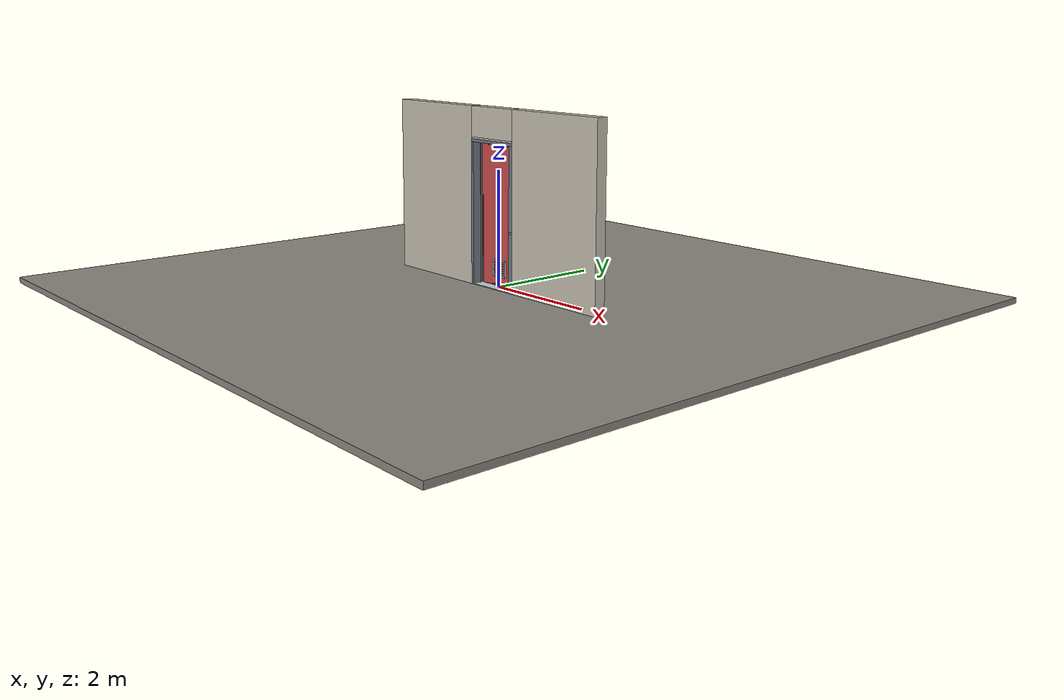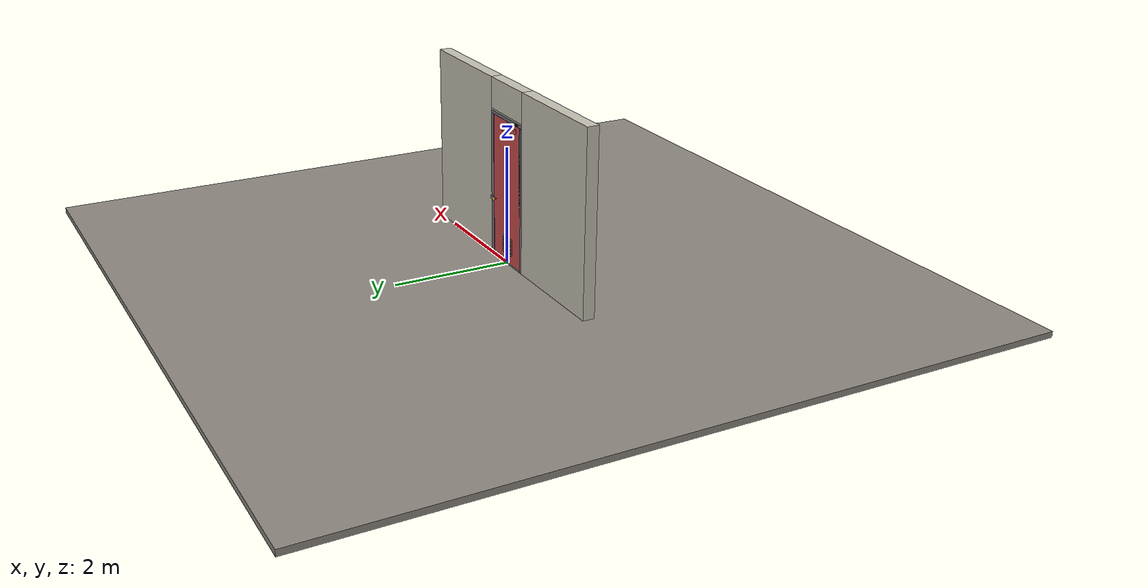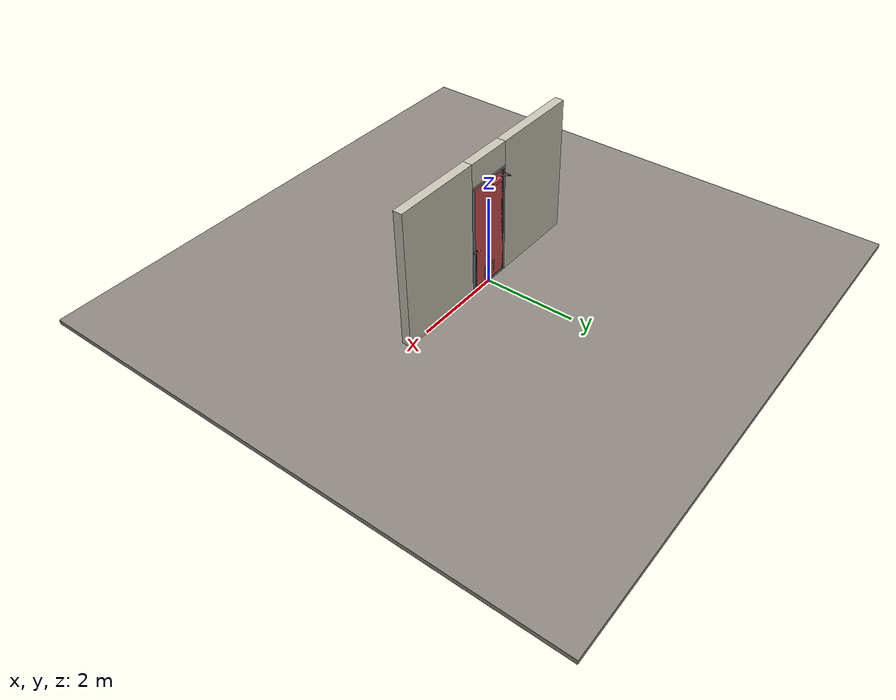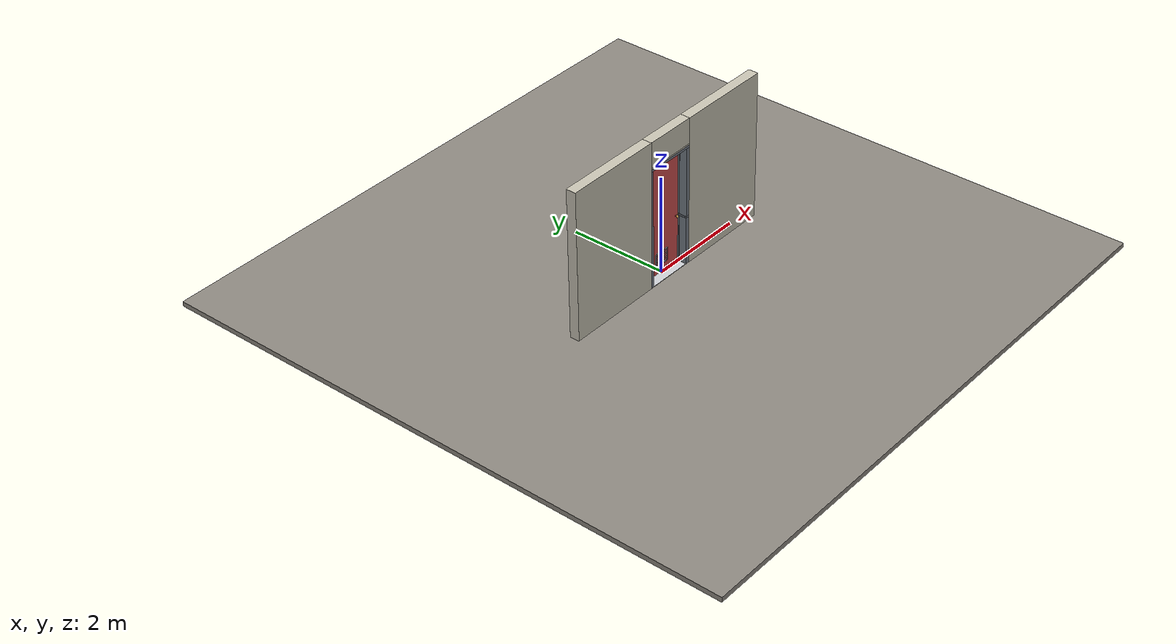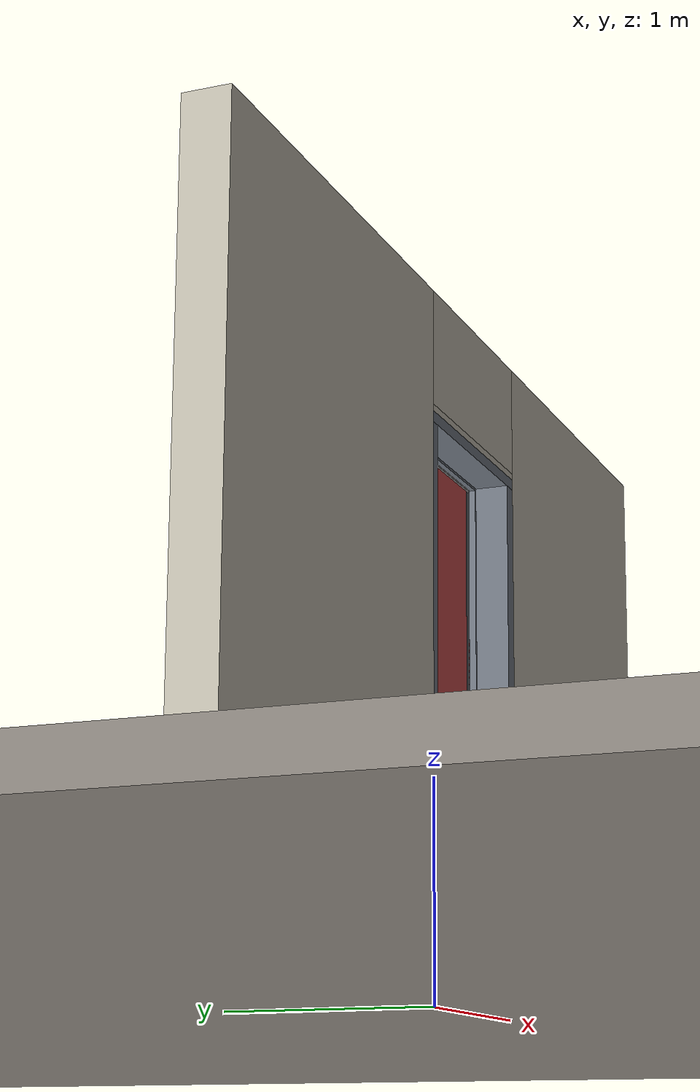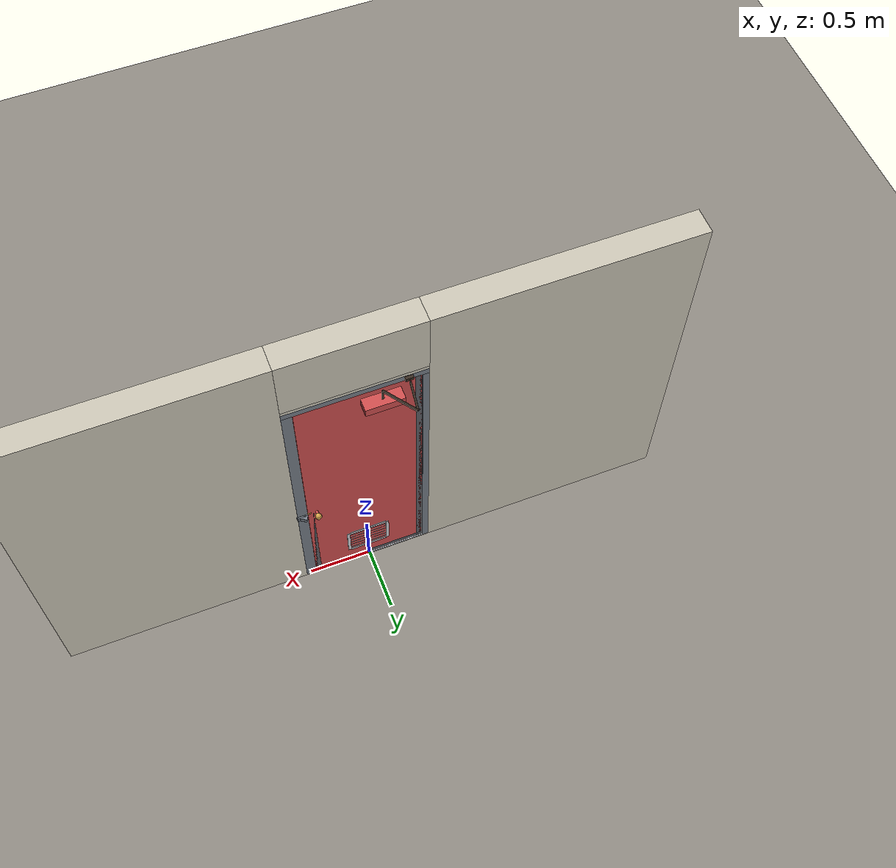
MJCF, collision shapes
<?xml version="1.0" ?>
<mujoco model="db0232_swing_single_full">
  <compiler angle="radian" meshdir="../../hardware" texturedir="../../textures" autolimits="true" inertiafromgeom="false"/>
  <option timestep="0.002" integrator="implicitfast" cone="elliptic" impratio="10" noslip_iterations="3">
    <flag multiccd="enable"/>
  </option>
  <size memory="16M"/>
  <default>
    <geom condim="4" solref="0.005 1" solimp="0.95 0.99 0.001"/>
    <joint solreflimit="0.005 1" solimplimit="0.95 0.99 0.001"/>
    <tendon solreflimit="0.005 1"/>
    <equality solref="0.002 1"/>
  </default>
  <visual>
    <headlight ambient="0.4 0.4 0.4" diffuse="0.7 0.7 0.7" specular="0.2 0.2 0.2"/>
    <quality shadowsize="4096"/>
    <map znear="0.01" zfar="60"/>
  </visual>
  <asset>
    <mesh name="closer_body_fdc4667657" file="closer_body_fdc4667657.obj"/>
    <mesh name="hinge_6a70328eaf" file="hinge_6a70328eaf.obj"/>
    <mesh name="hinge_jamb_2905960ffb" file="hinge_jamb_2905960ffb.obj"/>
    <mesh name="knob_d1888f6f03" file="knob_d1888f6f03.obj"/>
    <material name="mat_floor" rgba="0.55 0.53 0.5 1" specular="0.2" shininess="0.15" reflectance="0"/>
    <material name="mat_wall" rgba="0.78 0.76 0.7 1" specular="0.2" shininess="0.1" reflectance="0"/>
    <material name="mat_leaf" rgba="0.35 0.36 0.38 1" specular="0.68" shininess="0.4" reflectance="0.32"/>
    <material name="mat_mesh_infill" rgba="0.6 0.62 0.64 0.55" specular="0.68" shininess="0.3" reflectance="0.1"/>
    <material name="mat_hinge" rgba="0.65 0.66 0.68 1" specular="0.74" shininess="0.5" reflectance="0.36"/>
    <material name="mat_op_brass" rgba="0.85 0.66 0.3 1" specular="0.8" shininess="0.75" reflectance="0.4"/>
    <material name="mat_trim" rgba="0.85 0.66 0.3 1" specular="0.8" shininess="0.75" reflectance="0.4"/>
    <material name="mat_bolt" rgba="0.85 0.66 0.3 1" specular="0.8" shininess="0.75" reflectance="0.4"/>
    <material name="mat_frame" rgba="0.45 0.48 0.52 1" specular="0.32" shininess="0.6" reflectance="0.08"/>
    <material name="mat_seal" rgba="0.1 0.1 0.1 1" specular="0.2" shininess="0.1" reflectance="0"/>
    <material name="mat_threshold" rgba="0.8 0.81 0.83 1" specular="0.8" shininess="0.6" reflectance="0.4"/>
    <material name="mat_closer" rgba="0.22 0.17 0.13 1" specular="0.8" shininess="0.6" reflectance="0.4"/>
    <material name="mat_vent" rgba="0.8 0.81 0.83 1" specular="0.8" shininess="0.6" reflectance="0.4"/>
    <texture name="skybox" type="skybox" builtin="gradient" rgb1="0.6 0.7 0.85" rgb2="0.9 0.92 0.95" width="256" height="256"/>
  </asset>
  <worldbody>
    <light name="sun" pos="1.5 -2.5 4" dir="-0.3 0.5 -0.8" directional="true" diffuse="0.8 0.8 0.8" specular="0.3 0.3 0.3" castshadow="true"/>
    <light name="fill" pos="-1.5 2.5 3" dir="0.3 -0.5 -0.7" directional="true" diffuse="0.35 0.35 0.4" castshadow="false"/>
    <camera name="robot_view" pos="0 -3.012812 2.043887" xyaxes="1 0 0 0 0.26963 0.962964" fovy="52"/>
    <camera name="far_view" pos="0 2.832813 2.043887" xyaxes="-1 0 0 0 -0.26963 0.962964" fovy="52"/>
    <camera name="iso" pos="2.221337 -2.545162 2.511538" xyaxes="0.741536 0.670913 0 -0.242917 0.268487 0.932151" fovy="46"/>
    <camera name="detail_handle" pos="0.567 -0.8495 1.296" xyaxes="0.97561 0.219512 0 -0.070934 0.315262 0.94635" fovy="38"/>
    <geom name="floor" type="box" size="6 6 0.05" pos="0 0 -0.05" material="mat_floor" group="0" contype="1" conaffinity="1" friction="0.8 0.005 0.0001" density="2400"/>
    <geom name="wall_left" type="box" size="0.995 0.1 1.5255" pos="-1.505 -0.09 1.5255" material="mat_wall" group="0" contype="1" conaffinity="1" friction="0.6 0.005 0.0001" density="800"/>
    <geom name="wall_right" type="box" size="0.98 0.1 1.5255" pos="1.52 -0.09 1.5255" material="mat_wall" group="0" contype="1" conaffinity="1" friction="0.6 0.005 0.0001" density="800"/>
    <geom name="wall_header" type="box" size="0.525 0.1 0.26" pos="0.015 -0.09 2.791" material="mat_wall" group="0" contype="1" conaffinity="1" friction="0.6 0.005 0.0001" density="800"/>
    <geom name="hinge_0_jamb" type="mesh" mesh="hinge_jamb_2905960ffb" pos="-0.457 0.01 0.267" quat="0 1 0 0" material="mat_hinge" group="1" contype="0" conaffinity="0" density="7850"/>
    <geom name="hinge_1_jamb" type="mesh" mesh="hinge_jamb_2905960ffb" pos="-0.457 0.01 1.232" quat="0 1 0 0" material="mat_hinge" group="1" contype="0" conaffinity="0" density="7850"/>
    <geom name="hinge_2_jamb" type="mesh" mesh="hinge_jamb_2905960ffb" pos="-0.457 0.01 2.267" quat="0 1 0 0" material="mat_hinge" group="1" contype="0" conaffinity="0" density="7850"/>
    <geom name="jamb_hinge" type="box" size="0.025 0.1 1.2255" pos="-0.485 -0.09 1.2255" material="mat_frame" group="0" contype="1" conaffinity="1" friction="0.6 0.005 0.0001" density="300"/>
    <geom name="strike_1016_wall_n" type="box" size="0.04 0.09025 0.0183" pos="0.5 -0.09975 1.016" material="mat_frame" group="0" contype="1" conaffinity="1" friction="0.6 0.005 0.0001" density="300"/>
    <geom name="strike_1016_wall_p" type="box" size="0.04 0.008 0.0183" pos="0.5 0.0175 1.016" material="mat_frame" group="0" contype="1" conaffinity="1" friction="0.6 0.005 0.0001" density="300"/>
    <geom name="strike_1016_ramp" type="box" size="0.04 0.018028 0.0183" pos="0.503282 0.018312 1.016" quat="0.957092 0 0 -0.289784" material="mat_frame" group="0" contype="1" conaffinity="1" friction="0.12 0.005 0.0001" density="300"/>
    <geom name="strike_1016_back" type="box" size="0.0285 0.0095 0.0183" pos="0.5115 0 1.016" material="mat_frame" group="0" contype="1" conaffinity="1" friction="0.6 0.005 0.0001" density="300"/>
    <geom name="jamb_strike_0" type="box" size="0.04 0.1 0.49885" pos="0.5 -0.09 0.49885" material="mat_frame" group="0" contype="1" conaffinity="1" friction="0.6 0.005 0.0001" density="300"/>
    <geom name="jamb_strike_1" type="box" size="0.04 0.1 0.70835" pos="0.5 -0.09 1.74265" material="mat_frame" group="0" contype="1" conaffinity="1" friction="0.6 0.005 0.0001" density="300"/>
    <geom name="jamb_head" type="box" size="0.525 0.1 0.025" pos="0.015 -0.09 2.476" material="mat_frame" group="0" contype="1" conaffinity="1" friction="0.6 0.005 0.0001" density="300"/>
    <geom name="head_stud" type="box" size="0.525 0.1 0.015" pos="0.015 -0.09 2.516" material="mat_wall" group="0" contype="1" conaffinity="1" friction="0.6 0.005 0.0001" density="500"/>
    <geom name="stop_hinge" type="box" size="0.0055 0.016 1.2255" pos="-0.4545 -0.0195 1.2255" material="mat_frame" group="0" contype="1" conaffinity="1" friction="0.6 0.005 0.0001" density="300"/>
    <geom name="stop_strike" type="box" size="0.0055 0.016 0.49285" pos="0.4545 -0.0195 0.49285" material="mat_frame" group="0" contype="1" conaffinity="1" friction="0.6 0.005 0.0001" density="300"/>
    <geom name="stop_strike_1" type="box" size="0.0055 0.016 0.70235" pos="0.4545 -0.0195 1.74865" material="mat_frame" group="0" contype="1" conaffinity="1" friction="0.6 0.005 0.0001" density="300"/>
    <geom name="stop_head" type="box" size="0.46 0.016 0.0055" pos="0 -0.0195 2.4455" material="mat_frame" group="0" contype="1" conaffinity="1" friction="0.6 0.005 0.0001" density="300"/>
    <geom name="seal_hinge" type="box" size="0.004 0.003 1.2255" pos="-0.457 -0.006 1.2255" material="mat_seal" group="1" contype="0" conaffinity="0" density="1100"/>
    <geom name="seal_strike" type="box" size="0.004 0.003 0.49285" pos="0.457 -0.006 0.49285" material="mat_seal" group="1" contype="0" conaffinity="0" density="1100"/>
    <geom name="seal_strike_1" type="box" size="0.004 0.003 0.70235" pos="0.457 -0.006 1.74865" material="mat_seal" group="1" contype="0" conaffinity="0" density="1100"/>
    <geom name="seal_head" type="box" size="0.44 0.003 0.008" pos="0 -0.006 2.439" material="mat_seal" group="1" contype="0" conaffinity="0" density="1100"/>
    <geom name="threshold" type="box" size="0.51 0.1 0.0065" pos="0 -0.09 0.0065" material="mat_threshold" group="0" contype="1" conaffinity="1" friction="0.5 0.005 0.0001" density="2700"/>
    <geom name="closer_bracket" type="box" size="0.03 0.012 0.014" pos="-0.36 0.022 2.481" material="mat_closer" group="1" contype="0" conaffinity="0" density="2700"/>
    <site name="approach_point" pos="0 -1.5 0" quat="1 0 0 0" size="0.05" rgba="0.2 0.9 0.2 0.5" group="4"/>
    <site name="goal_point" pos="0 1.5 0" quat="1 0 0 0" size="0.05" rgba="0.2 0.9 0.2 0.5" group="4"/>
    <site name="door_plane_center" pos="0 0 1.2255" quat="1 0 0 0" size="0.02" rgba="0.2 0.9 0.2 0.5" group="4"/>
    <body name="leaf" pos="-0.46 0 0">
      <inertial pos="0.427027 0.01012 1.432389" mass="66.130213" quat="-0.479781 0.494473 0.512674 0.512321" diaginertia="4.006878525 39.917312453 43.866369337"/>
      <joint name="leaf_hinge" type="hinge" axis="0 0 1" pos="0.003 0.01 0" limited="true" range="0 1.570796" solreflimit="0.02 1" damping="12.307281" frictionloss="4.402074" stiffness="13.025241" springref="-2.475194" armature="0.02"/>
      <geom name="leaf_slab_col" type="box" size="0.457 0.003 1.215" pos="0.46 0 1.232" material="mat_leaf" group="3" contype="1" conaffinity="1" rgba="0.8 0.3 0.3 0.25" friction="0.45 0.005 0.0001" density="1"/>
      <geom name="leaf_rail_b" type="box" size="0.457 0.003 0.0225" pos="0.46 0 0.0395" material="mat_leaf" group="1" contype="0" conaffinity="0" density="1"/>
      <geom name="leaf_rail_t" type="box" size="0.457 0.003 0.0225" pos="0.46 0 2.4245" material="mat_leaf" group="1" contype="0" conaffinity="0" density="1"/>
      <geom name="leaf_stile_h" type="box" size="0.0225 0.003 1.215" pos="0.0255 0 1.232" material="mat_leaf" group="1" contype="0" conaffinity="0" density="1"/>
      <geom name="leaf_stile_l" type="box" size="0.0225 0.003 1.215" pos="0.8945 0 1.232" material="mat_leaf" group="1" contype="0" conaffinity="0" density="1"/>
      <geom name="leaf_mesh" type="box" size="0.412 0.0015 1.17" pos="0.46 0 1.232" material="mat_mesh_infill" group="1" contype="0" conaffinity="0" density="1"/>
      <geom name="hinge_0" type="mesh" mesh="hinge_6a70328eaf" pos="0.003 0.01 0.267" quat="0 1 0 0" material="mat_hinge" group="1" contype="0" conaffinity="0" density="7850"/>
      <geom name="hinge_1" type="mesh" mesh="hinge_6a70328eaf" pos="0.003 0.01 1.232" quat="0 1 0 0" material="mat_hinge" group="1" contype="0" conaffinity="0" density="7850"/>
      <geom name="hinge_2" type="mesh" mesh="hinge_6a70328eaf" pos="0.003 0.01 2.267" quat="0 1 0 0" material="mat_hinge" group="1" contype="0" conaffinity="0" density="7850"/>
      <geom name="leaf_latch_bolt_faceplate" type="box" size="0.0006 0.001 0.0283" pos="0.9164 0 1.016" material="mat_bolt" group="1" contype="0" conaffinity="0" density="8500"/>
      <geom name="closer_body" type="mesh" mesh="closer_body_fdc4667657" pos="0.3 0.003 2.35" quat="-0.707107 0.707107 0 0" material="mat_closer" group="1" contype="0" conaffinity="0" density="2000"/>
      <geom name="closer_body_col" type="box" size="0.145 0.05 0.035" pos="0.3 0.053 2.35" material="mat_closer" group="3" contype="1" conaffinity="1" rgba="0.8 0.3 0.3 0.25" friction="0.6 0.005 0.0001" density="2000"/>
      <geom name="closer_pinion_shaft" type="cylinder" size="0.008 0.0655" pos="0.3 0.053 2.4155" material="mat_closer" group="1" contype="0" conaffinity="0" density="2700"/>
      <geom name="louver_vent_stile_n_l" type="box" size="0.012 0.002 0.137" pos="0.298 -0.005 0.322" material="mat_vent" group="2" contype="0" conaffinity="0" density="2700"/>
      <geom name="louver_vent_stile_n_r" type="box" size="0.012 0.002 0.137" pos="0.622 -0.005 0.322" material="mat_vent" group="2" contype="0" conaffinity="0" density="2700"/>
      <geom name="louver_vent_rail_n_b" type="box" size="0.15 0.002 0.012" pos="0.46 -0.005 0.185" material="mat_vent" group="2" contype="0" conaffinity="0" density="2700"/>
      <geom name="louver_vent_rail_n_t" type="box" size="0.15 0.002 0.012" pos="0.46 -0.005 0.459" material="mat_vent" group="2" contype="0" conaffinity="0" density="2700"/>
      <geom name="louver_vent_stile_p_l" type="box" size="0.012 0.002 0.137" pos="0.298 0.005 0.322" material="mat_vent" group="2" contype="0" conaffinity="0" density="2700"/>
      <geom name="louver_vent_stile_p_r" type="box" size="0.012 0.002 0.137" pos="0.622 0.005 0.322" material="mat_vent" group="2" contype="0" conaffinity="0" density="2700"/>
      <geom name="louver_vent_rail_p_b" type="box" size="0.15 0.002 0.012" pos="0.46 0.005 0.185" material="mat_vent" group="2" contype="0" conaffinity="0" density="2700"/>
      <geom name="louver_vent_rail_p_t" type="box" size="0.15 0.002 0.012" pos="0.46 0.005 0.459" material="mat_vent" group="2" contype="0" conaffinity="0" density="2700"/>
      <geom name="louver_vent_slat_0" type="box" size="0.15 0.0015 0.015" pos="0.46 0 0.217833" quat="0.965926 -0.258819 0 0" material="mat_vent" group="2" contype="0" conaffinity="0" density="2700"/>
      <geom name="louver_vent_slat_1" type="box" size="0.15 0.0015 0.015" pos="0.46 0 0.2595" quat="0.965926 -0.258819 0 0" material="mat_vent" group="2" contype="0" conaffinity="0" density="2700"/>
      <geom name="louver_vent_slat_2" type="box" size="0.15 0.0015 0.015" pos="0.46 0 0.301167" quat="0.965926 -0.258819 0 0" material="mat_vent" group="2" contype="0" conaffinity="0" density="2700"/>
      <geom name="louver_vent_slat_3" type="box" size="0.15 0.0015 0.015" pos="0.46 0 0.342833" quat="0.965926 -0.258819 0 0" material="mat_vent" group="2" contype="0" conaffinity="0" density="2700"/>
      <geom name="louver_vent_slat_4" type="box" size="0.15 0.0015 0.015" pos="0.46 0 0.3845" quat="0.965926 -0.258819 0 0" material="mat_vent" group="2" contype="0" conaffinity="0" density="2700"/>
      <geom name="louver_vent_slat_5" type="box" size="0.15 0.0015 0.015" pos="0.46 0 0.426167" quat="0.965926 -0.258819 0 0" material="mat_vent" group="2" contype="0" conaffinity="0" density="2700"/>
      <site name="leaf_edge_mid" pos="0.917 0 1.215" quat="1 0 0 0" size="0.02" rgba="0.2 0.9 0.2 0.5" group="4"/>
      <body name="leaf_handle" pos="0.847 0 1.016">
        <inertial pos="0 0 0" mass="1.118215" quat="0.707107 0 0 -0.707107" diaginertia="0.000311907 0.002220821 0.002220821"/>
        <joint name="leaf_handle_hinge" type="hinge" axis="0 -1 0" limited="true" range="0 0.87" damping="0.14361" frictionloss="0.038" stiffness="0.5" springref="-0.5" armature="0.01"/>
        <geom name="leaf_handle_spindle" type="cylinder" size="0.006 0.011" pos="0 0 0" quat="0.707107 -0.707107 0 0" material="mat_op_brass" group="1" contype="0" conaffinity="0" density="7850"/>
        <geom name="leaf_handle_knob_n" type="mesh" mesh="knob_d1888f6f03" pos="0 -0.003 0" quat="0.707107 0.707107 0 0" material="mat_op_brass" group="1" contype="0" conaffinity="0" density="3000"/>
        <geom name="leaf_handle_knob_col_n" type="sphere" size="0.0243" pos="0 -0.0495 0" material="mat_op_brass" group="0" contype="1" conaffinity="1" friction="0.9 0.01 0.0001" density="3000"/>
        <geom name="leaf_handle_knob_neck_n" type="cylinder" size="0.011 0.012" pos="0 -0.015 0" quat="0.707107 -0.707107 0 0" material="mat_op_brass" group="3" contype="1" conaffinity="1" rgba="0.8 0.3 0.3 0.25" friction="0.6 0.005 0.0001" density="3000"/>
        <geom name="leaf_handle_knob_p" type="mesh" mesh="knob_d1888f6f03" pos="0 0.003 0" quat="-0.707107 0.707107 0 0" material="mat_op_brass" group="1" contype="0" conaffinity="0" density="3000"/>
        <geom name="leaf_handle_knob_col_p" type="sphere" size="0.0243" pos="0 0.0495 0" material="mat_op_brass" group="0" contype="1" conaffinity="1" friction="0.9 0.01 0.0001" density="3000"/>
        <geom name="leaf_handle_knob_neck_p" type="cylinder" size="0.011 0.012" pos="0 0.015 0" quat="0.707107 -0.707107 0 0" material="mat_op_brass" group="3" contype="1" conaffinity="1" rgba="0.8 0.3 0.3 0.25" friction="0.6 0.005 0.0001" density="3000"/>
        <site name="leaf_handle_grip_n" pos="0 -0.0495 0" quat="1 0 0 0" size="0.012" rgba="0.2 0.9 0.2 0.5" group="4"/>
        <site name="leaf_handle_grip_p" pos="0 0.0495 0" quat="1 0 0 0" size="0.012" rgba="0.2 0.9 0.2 0.5" group="4"/>
      </body>
      <body name="leaf_latch_bolt" pos="0.917 0 1.016">
        <inertial pos="-0.0055 0 0" mass="0.074627" quat="0.92388 -0.382683 0 0" diaginertia="0.000002271 0.000013255 0.000013255"/>
        <joint name="leaf_latch_bolt_slide" type="slide" axis="-1 0 0" limited="true" range="0 0.019" damping="2" frictionloss="0.3" stiffness="600" springref="-0.01" armature="0.1"/>
        <geom name="leaf_latch_bolt_capsule" type="capsule" size="0.008 0.0165" pos="-0.0055 0 0" quat="0.707107 0 0.707107 0" material="mat_bolt" group="0" contype="1" conaffinity="1" friction="0.2 0.005 0.0001" density="8500"/>
      </body>
      <body name="closer_arm_main" pos="0.3 0.053 2.481" quat="0.454107 0 0 0.890947">
        <inertial pos="0.14 0 0" mass="0.12096" quat="1 0 0 0" diaginertia="0.000003588 0.00079128 0.000792852"/>
        <joint name="closer_pinion" type="hinge" axis="0 0 1" limited="false" damping="0.01" armature="0.002"/>
        <geom name="closer_arm_main_geom" type="box" size="0.14 0.008 0.005" pos="0.14 0 0" material="mat_closer" group="1" contype="0" conaffinity="0" density="2700"/>
        <body name="closer_arm_fore" pos="0.28 0 0" quat="-0.373215 0 0 -0.927745">
          <inertial pos="0.128088 0 0" mass="0.076531" quat="1 0 0 0" diaginertia="0.000001771 0.000437665 0.000438201"/>
          <joint name="closer_elbow" type="hinge" axis="0 0 1" limited="false" damping="0.01" armature="0.002"/>
          <geom name="closer_arm_fore_geom" type="box" size="0.1125 0.007 0.004" pos="0.1125 0 0" material="mat_closer" group="1" contype="0" conaffinity="0" density="2700"/>
          <geom name="closer_fore_neck" type="box" size="0.0175 0.003 0.003" pos="0.2425 0 0" material="mat_closer" group="1" contype="0" conaffinity="0" density="2700"/>
          <geom name="closer_fore_pivot" type="cylinder" size="0.005 0.012" pos="0.26 0 0" material="mat_closer" group="1" contype="0" conaffinity="0" density="2700"/>
        </body>
      </body>
    </body>
  </worldbody>
  <tendon>
    <fixed name="leaf_latch_bolt_coupling" limited="true" range="0 10">
      <joint joint="leaf_latch_bolt_slide" coef="1"/>
      <joint joint="leaf_handle_hinge" coef="-0.023457"/>
    </fixed>
  </tendon>
  <equality>
    <connect name="closer_arm_connect" body1="closer_arm_fore" body2="world" anchor="0.26 0 0" active="true"/>
  </equality>
  <contact>
    <exclude body1="closer_arm_main" body2="leaf"/>
    <exclude body1="closer_arm_fore" body2="leaf"/>
    <exclude body1="closer_arm_main" body2="closer_arm_fore"/>
  </contact>
  <sensor>
    <jointpos name="leaf_hinge_pos" joint="leaf_hinge"/>
    <jointvel name="leaf_hinge_vel" joint="leaf_hinge"/>
    <jointpos name="leaf_handle_hinge_pos" joint="leaf_handle_hinge"/>
    <jointvel name="leaf_handle_hinge_vel" joint="leaf_handle_hinge"/>
    <jointpos name="leaf_latch_bolt_slide_pos" joint="leaf_latch_bolt_slide"/>
    <jointvel name="leaf_latch_bolt_slide_vel" joint="leaf_latch_bolt_slide"/>
  </sensor>
</mujoco>
